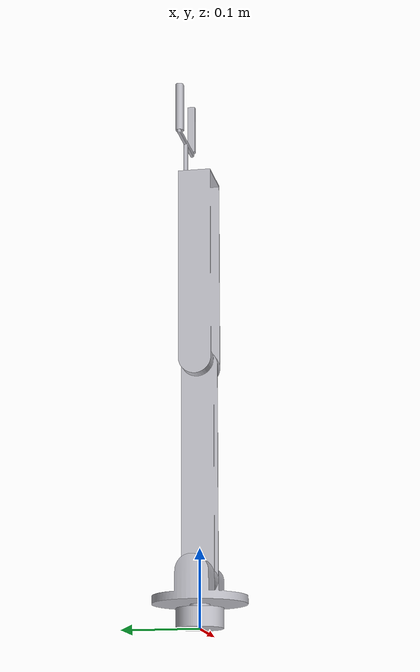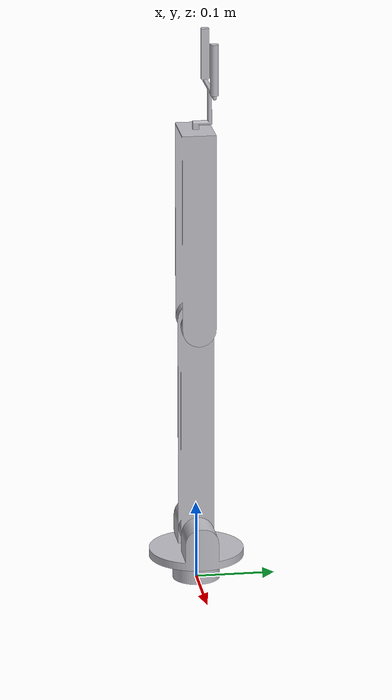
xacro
<?xml version="1.0" ?>
<robot name="arm" xmlns:xacro="http://www.ros.org/wiki/xacro">

<xacro:include filename="$(find arm_description)/urdf/materials.xacro" />
<xacro:include filename="$(find arm_description)/urdf/arm.trans" />
<xacro:include filename="$(find arm_description)/urdf/arm.gazebo" />

<link name="base_link">
  <inertial>
    <origin xyz="0.0 0.0 0.0125" rpy="0 0 0"/>
    <mass value="0.5548838024402973"/>
    <inertia ixx="0.000154" iyy="0.000154" izz="0.00025" ixy="-0.0" iyz="0.0" ixz="0.0"/>
  </inertial>
  <visual>
    <origin xyz="0 0 0" rpy="0 0 0"/>
    <geometry>
      <mesh filename="package://arm_description/meshes/base_link.stl" scale="0.001 0.001 0.001"/>
    </geometry>
    <material name="silver"/>
  </visual>
  <collision>
    <origin xyz="0 0 0" rpy="0 0 0"/>
    <geometry>
      <mesh filename="package://arm_description/meshes/base_link.stl" scale="0.001 0.001 0.001"/>
    </geometry>
  </collision>
</link>

<link name="Platform_1">
  <inertial>
    <origin xyz="1.2106877832099407e-14 8.586438178793906e-18 0.024342559907098243" rpy="0 0 0"/>
    <mass value="2.0787238143023408"/>
    <inertia ixx="0.00147" iyy="0.003108" izz="0.003539" ixy="-0.0" iyz="0.0" ixz="0.0"/>
  </inertial>
  <visual>
    <origin xyz="-0.0 -0.0 -0.025" rpy="0 0 0"/>
    <geometry>
      <mesh filename="package://arm_description/meshes/Platform_1.stl" scale="0.001 0.001 0.001"/>
    </geometry>
    <material name="silver"/>
  </visual>
  <collision>
    <origin xyz="-0.0 -0.0 -0.025" rpy="0 0 0"/>
    <geometry>
      <mesh filename="package://arm_description/meshes/Platform_1.stl" scale="0.001 0.001 0.001"/>
    </geometry>
  </collision>
</link>

<link name="D2_1">
  <inertial>
    <origin xyz="0.015 0.0 0.08469568327292498" rpy="0 0 0"/>
    <mass value="0.6577489881478827"/>
    <inertia ixx="0.006402" iyy="0.006409" izz="0.000181" ixy="-0.0" iyz="-0.0" ixz="-0.0"/>
  </inertial>
  <visual>
    <origin xyz="0.015 -0.0 -0.0625" rpy="0 0 0"/>
    <geometry>
      <mesh filename="package://arm_description/meshes/D2_1.stl" scale="0.001 0.001 0.001"/>
    </geometry>
    <material name="silver"/>
  </visual>
  <collision>
    <origin xyz="0.015 -0.0 -0.0625" rpy="0 0 0"/>
    <geometry>
      <mesh filename="package://arm_description/meshes/D2_1.stl" scale="0.001 0.001 0.001"/>
    </geometry>
  </collision>
</link>

<link name="D3_1">
  <inertial>
    <origin xyz="0.014999999999999958 -1.1804267164782249e-17 0.06749406762008453" rpy="0 0 0"/>
    <mass value="0.7634276110018746"/>
    <inertia ixx="0.006149" iyy="0.006661" izz="0.000708" ixy="-0.0" iyz="-0.0" ixz="-0.0"/>
  </inertial>
  <visual>
    <origin xyz="0.015 0.0 -0.3385" rpy="0 0 0"/>
    <geometry>
      <mesh filename="package://arm_description/meshes/D3_1.stl" scale="0.001 0.001 0.001"/>
    </geometry>
    <material name="silver"/>
  </visual>
  <collision>
    <origin xyz="0.015 0.0 -0.3385" rpy="0 0 0"/>
    <geometry>
      <mesh filename="package://arm_description/meshes/D3_1.stl" scale="0.001 0.001 0.001"/>
    </geometry>
  </collision>
</link>

<link name="D4_1">
  <inertial>
    <origin xyz="9.723077481125942e-17 0.01461192581321165 0.03300377103466645" rpy="0 0 0"/>
    <mass value="0.03728803268567669"/>
    <inertia ixx="1.5e-05" iyy="2.6e-05" izz="1.4e-05" ixy="0.0" iyz="-3e-06" ixz="0.0"/>
  </inertial>
  <visual>
    <origin xyz="-0.0 -0.0 -0.5885" rpy="0 0 0"/>
    <geometry>
      <mesh filename="package://arm_description/meshes/D4_1.stl" scale="0.001 0.001 0.001"/>
    </geometry>
    <material name="silver"/>
  </visual>
  <collision>
    <origin xyz="-0.0 -0.0 -0.5885" rpy="0 0 0"/>
    <geometry>
      <mesh filename="package://arm_description/meshes/D4_1.stl" scale="0.001 0.001 0.001"/>
    </geometry>
  </collision>
</link>

<link name="Finger_1_1">
  <inertial>
    <origin xyz="-0.005466749294592968 -6.938893903907228e-18 0.03199999999999992" rpy="0 0 0"/>
    <mass value="0.044849201864543935"/>
    <inertia ixx="1.6e-05" iyy="1.6e-05" izz="1e-06" ixy="-0.0" iyz="-0.0" ixz="0.0"/>
  </inertial>
  <visual>
    <origin xyz="-0.0475 -0.0175 -0.641" rpy="0 0 0"/>
    <geometry>
      <mesh filename="package://arm_description/meshes/Finger_1_1.stl" scale="0.001 0.001 0.001"/>
    </geometry>
    <material name="silver"/>
  </visual>
  <collision>
    <origin xyz="-0.0475 -0.0175 -0.641" rpy="0 0 0"/>
    <geometry>
      <mesh filename="package://arm_description/meshes/Finger_1_1.stl" scale="0.001 0.001 0.001"/>
    </geometry>
  </collision>
</link>

<link name="Finger_2_1">
  <inertial>
    <origin xyz="0.005466749294592975 -6.938893903907228e-18 0.03199999999999992" rpy="0 0 0"/>
    <mass value="0.044849201864543935"/>
    <inertia ixx="1.6e-05" iyy="1.6e-05" izz="1e-06" ixy="0.0" iyz="-0.0" ixz="0.0"/>
  </inertial>
  <visual>
    <origin xyz="0.0475 -0.0175 -0.641" rpy="0 0 0"/>
    <geometry>
      <mesh filename="package://arm_description/meshes/Finger_2_1.stl" scale="0.001 0.001 0.001"/>
    </geometry>
    <material name="silver"/>
  </visual>
  <collision>
    <origin xyz="0.0475 -0.0175 -0.641" rpy="0 0 0"/>
    <geometry>
      <mesh filename="package://arm_description/meshes/Finger_2_1.stl" scale="0.001 0.001 0.001"/>
    </geometry>
  </collision>
</link>

<joint name="D1" type="continuous">
  <origin xyz="0.0 0.0 0.025" rpy="0 0 0"/>
  <parent link="base_link"/>
  <child link="Platform_1"/>
  <axis xyz="0.0 0.0 1.0"/>
</joint>

<joint name="D2" type="fixed">
  <origin xyz="-0.015 0.0 0.0375" rpy="0 0 0"/>
  <parent link="Platform_1"/>
  <child link="D2_1"/>
</joint>

<joint name="D3" type="continuous">
  <origin xyz="0.0 -0.0 0.276" rpy="0 0 0"/>
  <parent link="D2_1"/>
  <child link="D3_1"/>
  <axis xyz="-1.0 0.0 0.0"/>
</joint>

<joint name="D4" type="continuous">
  <origin xyz="0.015 0.0 0.25" rpy="0 0 0"/>
  <parent link="D3_1"/>
  <child link="D4_1"/>
  <axis xyz="0.0 0.0 1.0"/>
</joint>

<joint name="G1" type="continuous">
  <origin xyz="0.0475 0.0175 0.0525" rpy="0 0 0"/>
  <parent link="D4_1"/>
  <child link="Finger_1_1"/>
  <axis xyz="0.0 1.0 0.0"/>
  <limit upper="0.0" lower="0.0" effort="100" velocity="100"/>
</joint>

<joint name="G2" type="continuous">
  <origin xyz="-0.0475 0.0175 0.0525" rpy="0 0 0"/>
  <parent link="D4_1"/>
  <child link="Finger_2_1"/>
  <axis xyz="0.0 1.0 0.0"/>
  <limit upper="0.0" lower="0.0" effort="100" velocity="100"/>
</joint>

</robot>

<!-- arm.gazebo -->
<robot name="arm" xmlns:xacro="http://www.ros.org/wiki/xacro" >

<xacro:property name="body_color" value="Gazebo/Silver" />

<gazebo>
  <plugin name="control" filename="libgazebo_ros_control.so"/>
</gazebo>
<gazebo reference="base_link">
  <material>${body_color}</material>
  <mu1>0.2</mu1>
  <mu2>0.2</mu2>
  <selfCollide>true</selfCollide>
  <gravity>true</gravity>
</gazebo>

<gazebo reference="Platform_1">
  <material>${body_color}</material>
  <mu1>0.2</mu1>
  <mu2>0.2</mu2>
  <selfCollide>true</selfCollide>
</gazebo>

<gazebo reference="D2_1">
  <material>${body_color}</material>
  <mu1>0.2</mu1>
  <mu2>0.2</mu2>
  <selfCollide>true</selfCollide>
</gazebo>

<gazebo reference="D3_1">
  <material>${body_color}</material>
  <mu1>0.2</mu1>
  <mu2>0.2</mu2>
  <selfCollide>true</selfCollide>
</gazebo>

<gazebo reference="D4_1">
  <material>${body_color}</material>
  <mu1>0.2</mu1>
  <mu2>0.2</mu2>
  <selfCollide>true</selfCollide>
</gazebo>

<gazebo reference="Finger_1_1">
  <material>${body_color}</material>
  <mu1>0.2</mu1>
  <mu2>0.2</mu2>
  <selfCollide>true</selfCollide>
</gazebo>

<gazebo reference="Finger_2_1">
  <material>${body_color}</material>
  <mu1>0.2</mu1>
  <mu2>0.2</mu2>
  <selfCollide>true</selfCollide>
</gazebo>

</robot>
